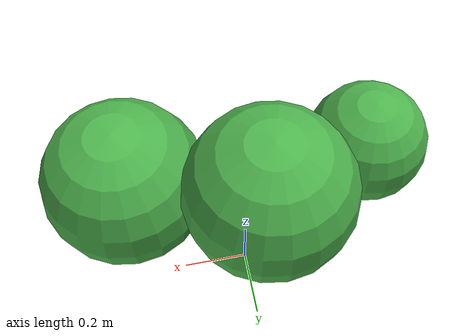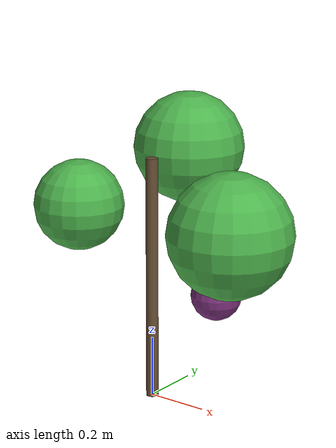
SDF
<?xml version="1.0" ?>
<sdf version="1.8">
  <model name="vine_plant">
    <static>true</static>

    <!-- Main vine trunk -->
    <link name="trunk">
      <pose>0 0 0.4 0 0 0</pose>
      <collision name="trunk_collision">
        <geometry>
          <cylinder>
            <radius>0.02</radius>
            <length>0.8</length>
          </cylinder>
        </geometry>
      </collision>
      <visual name="trunk_visual">
        <geometry>
          <cylinder>
            <radius>0.02</radius>
            <length>0.8</length>
          </cylinder>
        </geometry>
        <material>
          <ambient>0.3 0.2 0.1 1</ambient>
          <diffuse>0.4 0.3 0.2 1</diffuse>
          <specular>0.1 0.1 0.1 1</specular>
        </material>
      </visual>
    </link>

    <!-- Foliage cluster 1 -->
    <link name="foliage_1">
      <pose>0.3 0 0.6 0 0 0</pose>
      <collision name="foliage_1_collision">
        <geometry>
          <sphere>
            <radius>0.2</radius>
          </sphere>
        </geometry>
      </collision>
      <visual name="foliage_1_visual">
        <geometry>
          <sphere>
            <radius>0.2</radius>
          </sphere>
        </geometry>
        <material>
          <ambient>0.2 0.5 0.2 1</ambient>
          <diffuse>0.3 0.7 0.3 1</diffuse>
          <specular>0.1 0.2 0.1 1</specular>
        </material>
      </visual>
    </link>

    <!-- Foliage cluster 2 -->
    <link name="foliage_2">
      <pose>-0.3 0 0.6 0 0 0</pose>
      <collision name="foliage_2_collision">
        <geometry>
          <sphere>
            <radius>0.15</radius>
          </sphere>
        </geometry>
      </collision>
      <visual name="foliage_2_visual">
        <geometry>
          <sphere>
            <radius>0.15</radius>
          </sphere>
        </geometry>
        <material>
          <ambient>0.2 0.5 0.2 1</ambient>
          <diffuse>0.3 0.7 0.3 1</diffuse>
          <specular>0.1 0.2 0.1 1</specular>
        </material>
      </visual>
    </link>

    <!-- Foliage cluster 3 -->
    <link name="foliage_3">
      <pose>0 0.2 0.8 0 0 0</pose>
      <collision name="foliage_3_collision">
        <geometry>
          <sphere>
            <radius>0.18</radius>
          </sphere>
        </geometry>
      </collision>
      <visual name="foliage_3_visual">
        <geometry>
          <sphere>
            <radius>0.18</radius>
          </sphere>
        </geometry>
        <material>
          <ambient>0.2 0.5 0.2 1</ambient>
          <diffuse>0.3 0.7 0.3 1</diffuse>
          <specular>0.1 0.2 0.1 1</specular>
        </material>
      </visual>
    </link>

    <!-- Grape clusters (seasonal) -->
    <link name="grapes_1">
      <pose>0.25 0 0.4 0 0 0</pose>
      <collision name="grapes_1_collision">
        <geometry>
          <sphere>
            <radius>0.08</radius>
          </sphere>
        </geometry>
      </collision>
      <visual name="grapes_1_visual">
        <geometry>
          <sphere>
            <radius>0.08</radius>
          </sphere>
        </geometry>
        <material>
          <ambient>0.3 0.1 0.3 1</ambient>
          <diffuse>0.5 0.2 0.5 1</diffuse>
          <specular>0.3 0.3 0.3 1</specular>
        </material>
      </visual>
    </link>

    <!-- Fixed joints -->
    <joint name="trunk_to_foliage_1" type="fixed">
      <parent>trunk</parent>
      <child>foliage_1</child>
    </joint>

    <joint name="trunk_to_foliage_2" type="fixed">
      <parent>trunk</parent>
      <child>foliage_2</child>
    </joint>

    <joint name="trunk_to_foliage_3" type="fixed">
      <parent>trunk</parent>
      <child>foliage_3</child>
    </joint>

    <joint name="trunk_to_grapes_1" type="fixed">
      <parent>trunk</parent>
      <child>grapes_1</child>
    </joint>
  </model>
</sdf>
